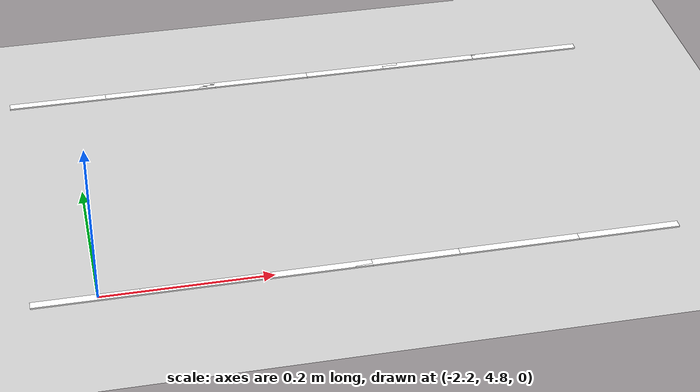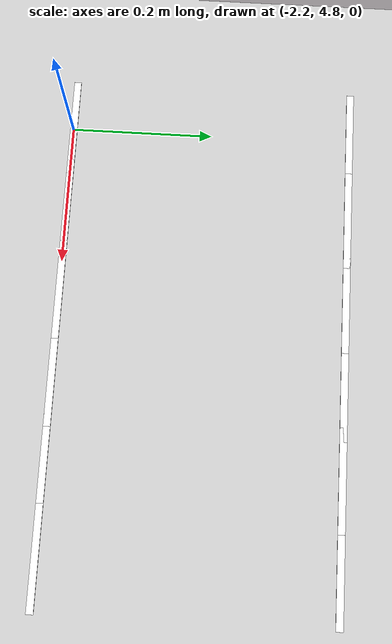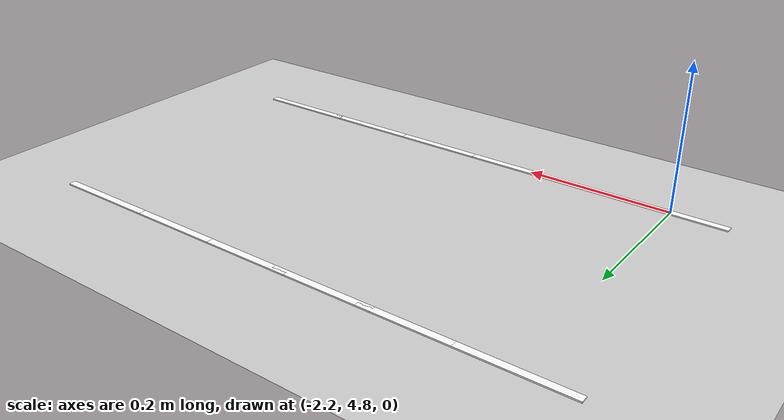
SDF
<sdf version="1.7">
 <world name="default">
  <model name="ground_plane">
   <static>1</static>
   <link name="link">
    <collision name="collision">
     <geometry><plane><normal>0 0 1</normal><size>100 100</size></plane></geometry>
     <surface>
      <contact><collide_bitmask>65535</collide_bitmask></contact>
      <friction><ode><mu>100</mu><mu2>50</mu2></ode></friction>
     </surface>
    </collision>
    <visual name="visual">
     <cast_shadows>0</cast_shadows>
     <geometry><plane><normal>0 0 1</normal><size>100 100</size></plane></geometry>
     <material>
      <script><uri>file://media/materials/scripts/gazebo.material</uri><name>Gazebo/Grey</name></script>
     </material>
    </visual>
   </link>
  </model>
  <model name="lane_line_left_237">
   <static>1</static>
   <link name="link">
    <pose>0 0 -0.004 0 -0 0</pose>
    <visual name="visual">
     <geometry><box><size>0.1424 0.01 0.01</size></box></geometry>
     <material><ambient>1 1 1 1</ambient><diffuse>1 1 1 1</diffuse></material>
    </visual>
    <collision name="collision"><geometry><box><size>0.1424 0.01 0.01</size></box></geometry></collision>
   </link>
   <pose>-1.59184 4.8 0 0 -0 3.14159</pose>
  </model>
  <model name="lane_line_right_237">
   <static>1</static>
   <link name="link">
    <pose>0 0 -0.004 0 -0 0</pose>
    <visual name="visual">
     <geometry><box><size>0.1424 0.01 0.01</size></box></geometry>
     <material><ambient>1 1 1 1</ambient><diffuse>1 1 1 1</diffuse></material>
    </visual>
    <collision name="collision"><geometry><box><size>0.1424 0.01 0.01</size></box></geometry></collision>
   </link>
   <pose>-1.59184 5.2 0 0 -0 3.14159</pose>
  </model>
  <model name="lane_line_left_238">
   <static>1</static>
   <link name="link">
    <pose>0 0 -0.004 0 -0 0</pose>
    <visual name="visual">
     <geometry><box><size>0.1424 0.01 0.01</size></box></geometry>
     <material><ambient>1 1 1 1</ambient><diffuse>1 1 1 1</diffuse></material>
    </visual>
    <collision name="collision"><geometry><box><size>0.1424 0.01 0.01</size></box></geometry></collision>
   </link>
   <pose>-1.71429 4.8 0 0 -0 3.14159</pose>
  </model>
  <model name="lane_line_right_238">
   <static>1</static>
   <link name="link">
    <pose>0 0 -0.004 0 -0 0</pose>
    <visual name="visual">
     <geometry><box><size>0.1424 0.01 0.01</size></box></geometry>
     <material><ambient>1 1 1 1</ambient><diffuse>1 1 1 1</diffuse></material>
    </visual>
    <collision name="collision"><geometry><box><size>0.1424 0.01 0.01</size></box></geometry></collision>
   </link>
   <pose>-1.71429 5.2 0 0 -0 3.14159</pose>
  </model>
  <model name="lane_line_left_239">
   <static>1</static>
   <link name="link">
    <pose>0 0 -0.004 0 -0 0</pose>
    <visual name="visual">
     <geometry><box><size>0.1424 0.01 0.01</size></box></geometry>
     <material><ambient>1 1 1 1</ambient><diffuse>1 1 1 1</diffuse></material>
    </visual>
    <collision name="collision"><geometry><box><size>0.1424 0.01 0.01</size></box></geometry></collision>
   </link>
   <pose>-1.83673 4.8 0 0 -0 3.14159</pose>
  </model>
  <model name="lane_line_right_239">
   <static>1</static>
   <link name="link">
    <pose>0 0 -0.004 0 -0 0</pose>
    <visual name="visual">
     <geometry><box><size>0.1424 0.01 0.01</size></box></geometry>
     <material><ambient>1 1 1 1</ambient><diffuse>1 1 1 1</diffuse></material>
    </visual>
    <collision name="collision"><geometry><box><size>0.1424 0.01 0.01</size></box></geometry></collision>
   </link>
   <pose>-1.83673 5.2 0 0 -0 3.14159</pose>
  </model>
  <model name="lane_line_left_240">
   <static>1</static>
   <link name="link">
    <pose>0 0 -0.004 0 -0 0</pose>
    <visual name="visual">
     <geometry><box><size>0.1424 0.01 0.01</size></box></geometry>
     <material><ambient>1 1 1 1</ambient><diffuse>1 1 1 1</diffuse></material>
    </visual>
    <collision name="collision"><geometry><box><size>0.1424 0.01 0.01</size></box></geometry></collision>
   </link>
   <pose>-1.95918 4.8 0 0 -0 3.14159</pose>
  </model>
  <model name="lane_line_right_240">
   <static>1</static>
   <link name="link">
    <pose>0 0 -0.004 0 -0 0</pose>
    <visual name="visual">
     <geometry><box><size>0.1424 0.01 0.01</size></box></geometry>
     <material><ambient>1 1 1 1</ambient><diffuse>1 1 1 1</diffuse></material>
    </visual>
    <collision name="collision"><geometry><box><size>0.1424 0.01 0.01</size></box></geometry></collision>
   </link>
   <pose>-1.95918 5.2 0 0 -0 3.14159</pose>
  </model>
  <model name="lane_line_left_241">
   <static>1</static>
   <link name="link">
    <pose>0 0 -0.004 0 -0 0</pose>
    <visual name="visual">
     <geometry><box><size>0.1424 0.01 0.01</size></box></geometry>
     <material><ambient>1 1 1 1</ambient><diffuse>1 1 1 1</diffuse></material>
    </visual>
    <collision name="collision"><geometry><box><size>0.1424 0.01 0.01</size></box></geometry></collision>
   </link>
   <pose>-2.08163 4.8 0 0 -0 3.14159</pose>
  </model>
  <model name="lane_line_right_241">
   <static>1</static>
   <link name="link">
    <pose>0 0 -0.004 0 -0 0</pose>
    <visual name="visual">
     <geometry><box><size>0.1424 0.01 0.01</size></box></geometry>
     <material><ambient>1 1 1 1</ambient><diffuse>1 1 1 1</diffuse></material>
    </visual>
    <collision name="collision"><geometry><box><size>0.1424 0.01 0.01</size></box></geometry></collision>
   </link>
   <pose>-2.08163 5.2 0 0 -0 3.14159</pose>
  </model>
  <model name="lane_line_left_242">
   <static>1</static>
   <link name="link">
    <pose>0 0 -0.004 0 -0 0</pose>
    <visual name="visual">
     <geometry><box><size>0.1424 0.01 0.01</size></box></geometry>
     <material><ambient>1 1 1 1</ambient><diffuse>1 1 1 1</diffuse></material>
    </visual>
    <collision name="collision"><geometry><box><size>0.1424 0.01 0.01</size></box></geometry></collision>
   </link>
   <pose>-2.20408 4.8 0 0 -0 3.14159</pose>
  </model>
  <model name="lane_line_right_242">
   <static>1</static>
   <link name="link">
    <pose>0 0 -0.004 0 -0 0</pose>
    <visual name="visual">
     <geometry><box><size>0.1424 0.01 0.01</size></box></geometry>
     <material><ambient>1 1 1 1</ambient><diffuse>1 1 1 1</diffuse></material>
    </visual>
    <collision name="collision"><geometry><box><size>0.1424 0.01 0.01</size></box></geometry></collision>
   </link>
   <pose>-2.20408 5.2 0 0 -0 3.14159</pose>
  </model>
 </world>
</sdf>
